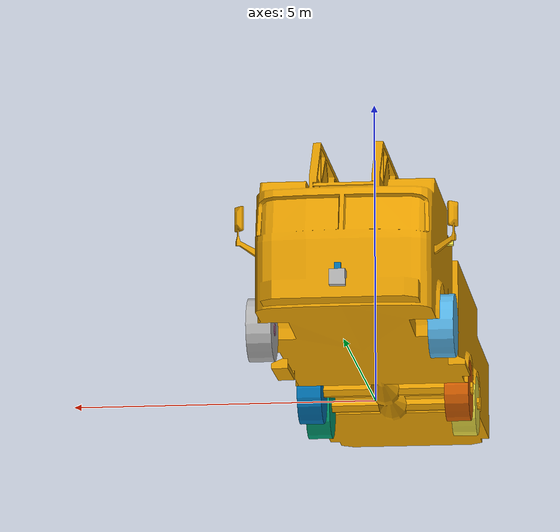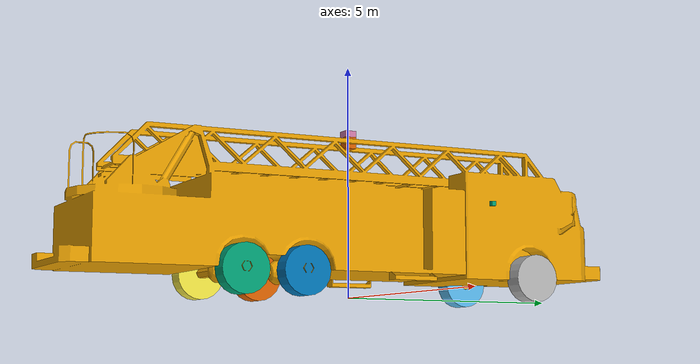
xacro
<?xml version="1.0"?>
<!-- Revolute-Revolute Manipulator -->
<robot name="$(arg robot_name)" xmlns:xacro="http://www.ros.org/wiki/xacro">

      <xacro:property name="PI" value="3.1415926835897931"/>
      <xacro:property name="base_height" value="1.65"/>
      <xacro:property name="base_mass" value="2050"/>
      <xacro:property name="base_mass_ixx" value="63"/>
      <xacro:property name="base_mass_iyy" value="1048"/>
      <xacro:property name="base_mass_izz" value="1111"/>
      <xacro:property name="base_mass_ixz" value="-31"/>
      <xacro:property name="car_width" value="2.500"/>
      <xacro:property name="car_height" value="1.3"/>

      <xacro:property name="tyre_x_front" value="1.2315"/>
      <xacro:property name="tyre_y_front" value="3.725845"/>
      <xacro:property name="tyre_length_front" value="0.4031"/>

      <xacro:property name="tyre_x_middle" value="1.2315"/>
      <xacro:property name="tyre_y_middle" value="1.629935"/>
      <xacro:property name="tyre_length_middle" value="0.4031"/>

      <xacro:property name="tyre_x_back" value="1.2315"/>
      <xacro:property name="tyre_y_back" value="2.956695"/>
      <xacro:property name="tyre_length_back" value="0.4031"/>

      <xacro:property name="tyre_r" value="0.5"/>
      <xacro:property name="tyre_radius" value="0.50625"/>
      <xacro:property name="tyre_mass" value="40"/>
      <xacro:property name="tyre_mass_ixx" value="54"/>
      <xacro:property name="tyre_mass_iyy" value="56"/>
      <xacro:property name="tyre_mass_izz" value="104"/>
      <xacro:property name="car_to_bumper" value="2.4"/>
      <xacro:property name="front_bumper_height" value="${car_height/2}"/>
      <xacro:property name="sensor_box" value="0.25"/>
      <xacro:property name="sensor_box2" value="0.31"/>
      <xacro:property name="camera_box" value="0.1"/>
      <xacro:property name="tyre_height" value="-0.696"/>
      <xacro:property name="str_length" value="0.01"/>
      <xacro:property name="str_radius" value="0.1"/>
      <xacro:property name="str_angle" value="0.6"/>
      <xacro:property name="judgeheight" value="0.05"/>

      <!-- Import all Gazebo-customization elements, including Gazebo colors -->
      <xacro:include filename="$(find multi_car)/description/urdf/urdf_fire_truck/fire_truck.gazebo" />

    <!-- Car Body -->

    <link name="base_link">
        <collision>
            <origin xyz="0 0 ${base_height}" rpy="0 0 0"/>
              <geometry>
                <box size="${car_width} 10.5 ${car_height}"/>
            </geometry>
          </collision>
        <visual>
            <origin xyz="0 0 0" rpy="0 0 0"/>
            <geometry>
              <mesh filename="file:///$(find multi_car)/description/meshes/fire_truck/fire_truck_nowheel.obj" scale="0.1 0.1 0.1"/>
            </geometry>
        </visual>
    </link>

    <joint name="inertial_joint" type="fixed">
          <parent link="base_link"/>
          <child link="main_mass"/>
          <origin xyz="0 0 0" rpy="0 0 0"/>
    </joint>

    <link name="main_mass" type="fixed">
        <parent link="inertial_joint"/>
        <inertial>
            <origin xyz="0 1 ${base_height-0.4}" rpy="0 0 0"/>
            <mass value="${base_mass}"/>
            <inertia
              ixx="${base_mass_ixx}"  ixy="0.000000" ixz="${base_mass_ixz}"
              iyy="${base_mass_iyy}" iyz="0.000000"
              izz="${base_mass_izz}"/>
          </inertial>
    </link>
    <!--Back Right Wheel-->

    <joint name="back_right_wheel_joint" type="continuous">
          <parent link="base_link"/>
          <child link="back_right_wheel_link"/>
          <origin xyz="${tyre_x_back} ${-tyre_y_back} ${tyre_r-judgeheight}" rpy="0 0 ${PI}"/>
          <axis xyz="1 0 0"/>
          <dynamics damping="0.1"/>
        <limit effort="10000" velocity="100" />
          <joint_properties damping="0.0" friction="0.0" />
    </joint>

    <link name="back_right_wheel_link">
        <collision>
            <origin xyz="0 0 0" rpy="${PI/2} 0 ${PI/2} "/>
            <geometry>
            <cylinder length="${tyre_length_back}" radius="${tyre_radius}"/>
            </geometry>
        </collision>

        <visual>
            <origin xyz="${-tyre_x_back} ${tyre_y_back} ${-tyre_radius-judgeheight+0.07}" rpy="0 0 0 "/>
            <geometry>
              <mesh filename="file:///$(find multi_car)/description/meshes/fire_truck/wheel_backright.obj" scale="0.1 0.1 0.1"/>
            </geometry>
        </visual>

          <inertial>
            <origin xyz="0 0 0" rpy="0 0 0"/>
            <mass value="${tyre_mass}"/>
            <inertia
              ixx="${tyre_mass_ixx}"  ixy="0.000000"  ixz="0.000000"
              iyy="${tyre_mass_iyy}"  iyz="0.000000"
              izz="${tyre_mass_izz}"/>
          </inertial>
    </link>

    <!--Back Left Wheel-->

    <joint name="back_left_wheel_joint" type="continuous">
          <parent link="base_link"/>
          <child link="back_left_wheel_link"/>
          <origin xyz="${-tyre_x_back} ${-tyre_y_back} ${tyre_r-judgeheight}" rpy="0 0 ${PI}"/>
          <axis xyz="1 0 0"/>
          <dynamics damping="0.1"/>
        <limit effort="10000" velocity="100" />
          <joint_properties damping="0.0" friction="0.0" />
    </joint>

    <link name="back_left_wheel_link">
        <collision>
            <origin xyz="0 0 0" rpy="${PI/2} 0 ${PI/2} "/>
            <geometry>
            <cylinder length="${tyre_length_back}" radius="${tyre_radius}"/>
            </geometry>
        </collision>

        <visual>
            <origin xyz="${tyre_x_back} ${tyre_y_back} ${-tyre_radius-judgeheight+0.07}" rpy="0 0 0 "/>
            <geometry>
              <mesh filename="file:///$(find multi_car)/description/meshes/fire_truck/wheel_backleft.obj" scale="0.1 0.1 0.1"/>
            </geometry>
        </visual>

          <inertial>
            <origin xyz="0 0 0" rpy="0 0 0"/>
            <mass value="${tyre_mass}"/>
            <inertia
              ixx="${tyre_mass_ixx}"  ixy="0.000000"  ixz="0.000000"
              iyy="${tyre_mass_iyy}"  iyz="0.000000"
              izz="${tyre_mass_izz}"/>
          </inertial>
    </link>
<!--Middle Right Wheel-->

    <joint name="middle_right_wheel_joint" type="continuous">
          <parent link="base_link"/>
          <child link="middle_right_wheel_link"/>
          <origin xyz="${tyre_x_middle} ${-tyre_y_middle} ${tyre_r-judgeheight}" rpy="0 0 ${PI}"/>
          <axis xyz="1 0 0"/>
          <dynamics damping="0.1"/>
        <limit effort="10000" velocity="100" />
          <joint_properties damping="0.0" friction="0.0" />
    </joint>

    <link name="middle_right_wheel_link">
        <collision>
            <origin xyz="0 0 0" rpy="${PI/2} 0 ${PI/2} "/>
            <geometry>
            <cylinder length="${tyre_length_middle}" radius="${tyre_radius}"/>
            </geometry>
        </collision>

        <visual>
            <origin xyz="${tyre_x_middle} ${tyre_y_middle} ${-tyre_radius-judgeheight+0.07}" rpy="0 0 0 "/>
            <geometry>
              <mesh filename="file:///$(find multi_car)/description/meshes/fire_truck/wheel_middleleft.obj" scale="0.1 0.1 0.1"/>
            </geometry>
        </visual>

          <inertial>
            <origin xyz="0 0 0" rpy="0 0 0"/>
            <mass value="${tyre_mass}"/>
            <inertia
              ixx="${tyre_mass_ixx}"  ixy="0.000000"  ixz="0.000000"
              iyy="${tyre_mass_iyy}"  iyz="0.000000"
              izz="${tyre_mass_izz}"/>
          </inertial>
    </link>

    <!--Middle Left Wheel-->

    <joint name="middle_left_wheel_joint" type="continuous">
          <parent link="base_link"/>
          <child link="middle_left_wheel_link"/>
          <origin xyz="${-tyre_x_middle} ${-tyre_y_middle} ${tyre_r-judgeheight}" rpy="0 0 ${PI}"/>
          <axis xyz="1 0 0"/>
          <dynamics damping="0.1"/>
        <limit effort="10000" velocity="100" />
          <joint_properties damping="0.0" friction="0.0" />
    </joint>

    <link name="middle_left_wheel_link">
        <collision>
            <origin xyz="0 0 0" rpy="${PI/2} 0 ${PI/2} "/>
            <geometry>
            <cylinder length="${tyre_length_middle}" radius="${tyre_radius}"/>
            </geometry>
        </collision>

        <visual>
            <origin xyz="${tyre_x_middle} ${tyre_y_middle} ${-tyre_radius-judgeheight+0.07}" rpy="0 0 0 "/>
            <geometry>
              <mesh filename="file:///$(find multi_car)/description/meshes/fire_truck/wheel_middleleft.obj" scale="0.1 0.1 0.1"/>
            </geometry>
        </visual>

          <inertial>
            <origin xyz="0 0 0" rpy="0 0 0"/>
            <mass value="${tyre_mass}"/>
            <inertia
              ixx="${tyre_mass_ixx}"  ixy="0.000000"  ixz="0.000000"
              iyy="${tyre_mass_iyy}"  iyz="0.000000"
              izz="${tyre_mass_izz}"/>
          </inertial>
    </link>

<!--Right Steering-->

<joint name="front_right_steering_joint" type="revolute">
	<parent link="base_link"/>
	<child link="front_right_steering_link"/>
	<origin xyz="${tyre_x_front+str_length/2} ${tyre_y_front} ${tyre_r-judgeheight}" rpy="0 0 0"/>
        <axis xyz="0 0 1"/>
	<limit effort="1000.0" lower="${-str_angle}" upper="${str_angle}" velocity="0.5"/>
</joint>

<link name="front_right_steering_link">
	<collision>
        <origin xyz="0 0 0" rpy="${PI/2} 0 ${PI/2} "/>
	      <geometry>
        <cylinder length="${str_length}" radius="${str_radius}"/>
       	</geometry>
	</collision>

	<visual>
        <origin xyz="0 0 0" rpy="${PI/2} 0 ${PI/2} "/>
        <geometry>
        <cylinder length="${str_length}" radius="${str_radius}"/>
        </geometry>
	</visual>

      <inertial>
        <origin xyz="0 0 0" rpy="0 0 0"/>
        <mass value="10.00"/>
        <inertia
          ixx="0.4"  ixy="0.000000"  ixz="0.000000"
          iyy="0.6"  iyz="0.000000"
          izz="0.4"/>
      </inertial>
</link>

<!--Right Front Wheel-->

<joint name="front_right_wheel_joint" type="continuous">
      <parent link="front_right_steering_link"/>
      <child link="front_right_wheel_link"/>
      <origin xyz="${str_length/2 + tyre_length_front/2} 0 0" rpy="0 0 ${PI}"/>
      <axis xyz="1 0 0"/>
</joint>

<link name="front_right_wheel_link">
     <collision>
       <origin xyz="0 0 0" rpy="${PI/2} 0 ${PI/2} "/>
        <geometry>
         <cylinder length="${tyre_length_front}" radius="${tyre_radius}"/>
	</geometry>
     </collision>

     <visual>
      <origin xyz="${-tyre_x_front} ${-tyre_y_front} ${-tyre_radius}" rpy="0 0 0"/>
        <geometry>
          <mesh filename="file:///$(find multi_car)/description/meshes/fire_truck/wheel_frontright.obj" scale="0.1 0.1 0.1"/>
       </geometry>
      </visual>

      <inertial>
        <origin xyz="0 0 0" rpy="0 0 0"/>
        <mass value="${tyre_mass}"/>
        <inertia
          ixx="${tyre_mass_ixx}"  ixy="0.000000"  ixz="0.000000"
          iyy="${tyre_mass_iyy}"  iyz="0.000000"
          izz="${tyre_mass_izz}"/>
      </inertial>
</link>

<!--Left Steering-->

<joint name="front_left_steering_joint" type="revolute">
	<parent link="base_link"/>
	<child link="front_left_steering_link"/>
	<origin xyz="${-tyre_x_front-str_length/2} ${tyre_y_front} ${tyre_r-judgeheight}" rpy="0 0 0"/>
        <axis xyz="0 0 1"/>
	<limit effort="1000.0" lower="${-str_angle}" upper="${str_angle}" velocity="0.5"/>
</joint>

<link name="front_left_steering_link">
	<collision>
        <origin xyz="0 0 0" rpy="${PI/2} 0 ${PI/2} "/>
	        <geometry>
        	 <cylinder length="${str_length}" radius="${str_radius}"/>
       		</geometry>
	</collision>

	<visual>
        <origin xyz="0 0 0" rpy="${PI/2} 0 ${PI/2} "/>
        <geometry>
        <cylinder length="${str_length}" radius="${str_radius}"/>
        </geometry>
	</visual>

      <inertial>
        <origin xyz="0 0 0" rpy="0 0 0"/>
        <mass value="10.00"/>
        <inertia
          ixx="0.4"  ixy="0.000000"  ixz="0.000000"
          iyy="0.6"  iyz="0.000000"
          izz="0.4"/>
      </inertial>
</link>

<!--Left Front Wheel-->

<joint name="front_left_wheel_joint" type="continuous">
      <parent link="front_left_steering_link"/>
      <child link="front_left_wheel_link"/>
      <origin xyz="${-str_length/2 - tyre_length_front/2} 0 0" rpy="0 0 ${PI}"/>
      <axis xyz="1 0 0"/>
</joint>

<link name="front_left_wheel_link">
     <collision>
       <origin xyz="0 0 0" rpy="${PI/2} 0 ${PI/2} "/>
        <geometry>
         <cylinder length="${tyre_length_front}" radius="${tyre_radius}"/>
      	</geometry>
     </collision>

     <visual>
      <origin xyz="${tyre_x_front} ${-tyre_y_front} ${-tyre_radius}" rpy="0 0 0"/>
        <geometry>
          <mesh filename="file:///$(find multi_car)/description/meshes/fire_truck/wheel_frontleft.obj" scale="0.1 0.1 0.1"/>
       </geometry>
      </visual>

      <inertial>
        <origin xyz="0 0 0" rpy="0 0 0"/>
        <mass value="${tyre_mass}"/>
        <inertia
          ixx="${tyre_mass_ixx}"  ixy="0.000000"  ixz="0.000000"
          iyy="${tyre_mass_iyy}"  iyz="0.000000"
          izz="${tyre_mass_izz}"/>
      </inertial>
</link>

<!-- Cameras-->

<joint name="camera_right_joint" type="fixed">
<origin xyz="${tyre_x_front + camera_box/2+0.2} ${tyre_y_front-1} ${0.725 + camera_box/2 + 1.25}" rpy="0 0 0"/>
	<axis xyz="0 0 1"/>
	<parent link="base_link"/>
	<child link="camera_right_link"/>
</joint>

<link name="camera_right_link">
	<collision>
	  <origin xyz="0 0 0" rpy="0 0 0"/>
	  <geometry>
	   <box size="${camera_box} ${camera_box} ${camera_box}"/>
	  </geometry>
	</collision>

	<visual>
	  <origin xyz="0 0 0" rpy="0 0 0"/>
	  <geometry>
	  <box size="${camera_box} ${camera_box} ${camera_box}"/>
    </geometry>
	</visual>

    <inertial>
      <mass value="1e-5" />
      <origin xyz="0 0 0" rpy="0 0 0"/>
      <inertia ixx="1e-6" ixy="0" ixz="0" iyy="1e-6" iyz="0" izz="1e-6" />
    </inertial>
</link>
  <gazebo reference="camera_right_link">
    <sensor type="camera" name="camera_right_sensor">
      <update_rate>30.0</update_rate>
      <camera name="camera_right">
        <horizontal_fov>1.3962634</horizontal_fov>
        <image>
          <width>800</width>
          <height>800</height>
          <format>R8G8B8</format>
        </image>
        <clip>
          <near>0.02</near>
          <far>300</far>
        </clip>
        <noise>
          <type>gaussian</type>
          <mean>0.0</mean>
          <stddev>0.007</stddev>
        </noise>
      </camera>
      <plugin name="camera_right_controller" filename="libgazebo_ros_camera.so">
        <alwaysOn>false</alwaysOn>
        <updateRate>0.0</updateRate>
        <cameraName>camera_right</cameraName>
        <imageTopicName>image_raw</imageTopicName>
        <cameraInfoTopicName>/$(arg robot_name)/camera_right_info</cameraInfoTopicName>
        <frameName>camera_link</frameName>
        <hackBaseline>0.07</hackBaseline>
        <distortionK1>0.0</distortionK1>
        <distortionK2>0.0</distortionK2>
        <distortionK3>0.0</distortionK3>
        <distortionT1>0.0</distortionT1>
        <distortionT2>0.0</distortionT2>
      </plugin>
    </sensor>
  </gazebo>

<joint name="camera_left_joint" type="fixed">
<origin xyz="${-tyre_x_front - camera_box/2-0.2} ${tyre_y_front-1} ${0.725 + camera_box/2 + 1.25}" rpy="0 0 ${PI}"/>
	<axis xyz="0 0 1"/>
	<parent link="base_link"/>
	<child link="camera_left_link"/>
</joint>

<link name="camera_left_link">
	<collision>
	  <origin xyz="0 0 0" rpy="0 0 0"/>
	  <geometry>
	   <box size="${camera_box} ${camera_box} ${camera_box}"/>
	  </geometry>
	</collision>

	<visual>
	  <origin xyz="0 0 0" rpy="0 0 0"/>
	  <geometry>
	  <box size="${camera_box} ${camera_box} ${camera_box}"/>
    </geometry>
	</visual>

    <inertial>
      <mass value="1e-5" />
      <origin xyz="0 0 0" rpy="0 0 0"/>
      <inertia ixx="1e-6" ixy="0" ixz="0" iyy="1e-6" iyz="0" izz="1e-6" />
    </inertial>
</link>
  <gazebo reference="camera_left_link">
    <sensor type="camera" name="camera_left_sensor">
      <update_rate>30.0</update_rate>
      <camera name="camera_left">
        <horizontal_fov>1.3962634</horizontal_fov>
        <image>
          <width>800</width>
          <height>800</height>
          <format>R8G8B8</format>
        </image>
        <clip>
          <near>0.02</near>
          <far>300</far>
        </clip>
        <noise>
          <type>gaussian</type>
          <mean>0.0</mean>
          <stddev>0.007</stddev>
        </noise>
      </camera>
      <plugin name="camera_left_controller" filename="libgazebo_ros_camera.so">
        <alwaysOn>false</alwaysOn>
        <updateRate>0.0</updateRate>
        <cameraName>camera_left</cameraName>
        <imageTopicName>image_raw</imageTopicName>
        <cameraInfoTopicName>/$(arg robot_name)/camera_left_info</cameraInfoTopicName>
        <frameName>camera_link</frameName>
        <hackBaseline>0.07</hackBaseline>
        <distortionK1>0.0</distortionK1>
        <distortionK2>0.0</distortionK2>
        <distortionK3>0.0</distortionK3>
        <distortionT1>0.0</distortionT1>
        <distortionT2>0.0</distortionT2>
      </plugin>
    </sensor>
  </gazebo>

<joint name="camera_front_joint" type="fixed">
<origin xyz="0 ${car_to_bumper+3.5} ${front_bumper_height + sensor_box/2 + 0.2}" rpy="0 0 ${PI/2}"/>
	<axis xyz="0 0 1"/>
	<parent link="base_link"/>
	<child link="camera_front_link"/>
</joint>

<link name="camera_front_link">
	<collision>
	  <origin xyz="0 0 0" rpy="0 0 0"/>
	  <geometry>
	   <box size="${camera_box} ${camera_box} ${camera_box}"/>
	  </geometry>
	</collision>

	<visual>
	  <origin xyz="0 0 0" rpy="0 0 0"/>
	  <geometry>
	  <box size="${camera_box} ${camera_box} ${camera_box}"/>
    </geometry>
	</visual>

    <inertial>
      <mass value="1e-5" />
      <origin xyz="0 0 0" rpy="0 0 0"/>
      <inertia ixx="1e-6" ixy="0" ixz="0" iyy="1e-6" iyz="0" izz="1e-6" />
    </inertial>
</link>
  <gazebo reference="camera_front_link">
    <sensor type="camera" name="camera_front_sensor">
      <update_rate>50.0</update_rate>
      <camera name="camera_front">
        <horizontal_fov>1.3962634</horizontal_fov>
        <image>
          <width>640</width>
          <width>480</width>
          <format>R8G8B8</format>
        </image>
        <clip>
          <near>0.02</near>
          <far>300</far>
        </clip>
        <noise>
          <type>gaussian</type>
          <mean>0.0</mean>
          <stddev>0.007</stddev>
        </noise>
      </camera>
      <plugin name="camera_front_controller" filename="libgazebo_ros_camera.so">
        <alwaysOn>false</alwaysOn>
        <updateRate>0.0</updateRate>
        <cameraName>camera_front</cameraName>
        <imageTopicName>image_raw</imageTopicName>
        <cameraInfoTopicName>/$(arg robot_name)/camera_front_info</cameraInfoTopicName>
        <frameName>camera_link</frameName>
        <hackBaseline>0.07</hackBaseline>
        <distortionK1>0.0</distortionK1>
        <distortionK2>0.0</distortionK2>
        <distortionK3>0.0</distortionK3>
        <distortionT1>0.0</distortionT1>
        <distortionT2>0.0</distortionT2>
      </plugin>
    </sensor>
  </gazebo>
<joint name="camera_joint" type="fixed">
<origin xyz="0 0 ${0.725 + sensor_box/2 + 2.5}" rpy="0 0 ${-PI/2}"/>
	<axis xyz="0 0 1"/>
	<parent link="base_link"/>
	<child link="camera_link"/>
</joint>

<link name="camera_link">
	<collision>
	  <origin xyz="0 0 0" rpy="0 0 0"/>
	  <geometry>
	   <box size="${sensor_box} ${sensor_box} ${sensor_box}"/>
	  </geometry>
	</collision>

	<visual>
	  <origin xyz="0 0 0" rpy="0 0 0"/>
	  <geometry>
	  <box size="${sensor_box} ${sensor_box} ${sensor_box}"/>
          </geometry>
	</visual>

    <inertial>
      <mass value="1e-5" />
      <origin xyz="0 0 0" rpy="0 0 0"/>
      <inertia ixx="1e-6" ixy="0" ixz="0" iyy="1e-6" iyz="0" izz="1e-6" />
    </inertial>
</link>

  <gazebo reference="camera_link">
    <sensor type="camera" name="camera_sensor">
      <update_rate>30.0</update_rate>
      <camera name="camera">
        <horizontal_fov>1.3962634</horizontal_fov>
        <image>
          <width>800</width>
          <height>800</height>
          <format>R8G8B8</format>
        </image>
        <clip>
          <near>0.02</near>
          <far>300</far>
        </clip>
        <noise>
          <type>gaussian</type>
          <mean>0.0</mean>
          <stddev>0.007</stddev>
        </noise>
      </camera>
      <plugin name="camera_link_controller" filename="libgazebo_ros_camera.so">
        <alwaysOn>false</alwaysOn>
        <updateRate>0.0</updateRate>
        <cameraName>camera_link</cameraName>
        <imageTopicName>image_raw</imageTopicName>
        <cameraInfoTopicName>/$(arg robot_name)/camera_info</cameraInfoTopicName>
        <frameName>camera_link</frameName>
        <hackBaseline>0.07</hackBaseline>
        <distortionK1>0.0</distortionK1>
        <distortionK2>0.0</distortionK2>
        <distortionK3>0.0</distortionK3>
        <distortionT1>0.0</distortionT1>
        <distortionT2>0.0</distortionT2>
      </plugin>
    </sensor>
  </gazebo>

<!--Velodyne LIDAR-->

<joint name="velodyne_joint" type="fixed">
	<origin xyz="0 0 ${sensor_box/2 + 0.01}" rpy="0 0 0"/>
	<axis xyz="0 0 1"/>
	<parent link="camera_link"/>
	<child link="center_laser_link"/>
</joint>

<link name="center_laser_link">
        <collision>
          <origin xyz="0 0 0" rpy="0 0 0"/>
          <geometry>
           <box size="${sensor_box} ${sensor_box} ${sensor_box}"/>
          </geometry>
        </collision>

        <visual>
          <origin xyz="0 0 0" rpy="0 0 0"/>
          <geometry>
           <box size="${sensor_box} ${sensor_box} ${sensor_box}"/>
          </geometry>
        </visual>

    <inertial>
      <mass value="1e-5" />
      <origin xyz="0 0 0" rpy="0 0 0"/>
      <inertia ixx="1e-6" ixy="0" ixz="0" iyy="1e-6" iyz="0" izz="1e-6" />
    </inertial>
</link>

<gazebo reference="center_laser_link">
    <sensor name='center_laser_sensor' type='ray'>
      <ray>
        <scan>
          <horizontal>
            <samples>512</samples>
            <resolution>1</resolution>
            <min_angle>-3.14</min_angle>
            <max_angle>3.14</max_angle>
          </horizontal>
          <vertical>
            <samples>16</samples>
            <min_angle>-0.1</min_angle>
            <max_angle>-0.35</max_angle>
          </vertical>
        </scan>
        <range>
          <min>0.2</min>
          <max>30</max>
          <resolution>0.01</resolution>
        </range>
      </ray>
      <plugin name='sick_lms291_controller' filename='libgazebo_ros_block_laser.so'>
        <topicName>/$(arg robot_name)/center_laser/scan</topicName>
        <frameName>center_laser_link</frameName>
      </plugin>
      <always_on>1</always_on>
      <update_rate>30</update_rate>
      <visualize>0</visualize>
    </sensor>
  </gazebo>

<!--front_laser-->
<joint name="front_laser_joint" type="fixed">
	<origin xyz="0 ${car_to_bumper+3.5} ${front_bumper_height + sensor_box/2 + 0.01}" rpy="0 0 0"/>
	<axis xyz="0 0 1"/>
	<parent link="base_link"/>
	<child link="front_laser_link"/>
</joint>

<link name="front_laser_link">
     <parent link="front_laser_joint"/>
        <collision>
          <origin xyz="0 0 0" rpy="0 0.0 0"/>
          <geometry>
           <box size="${sensor_box} ${sensor_box} ${sensor_box}"/>
          </geometry>
        </collision>

        <visual>
          <origin xyz="0 0 0" rpy="0 0 0"/>
          <geometry>
           <box size="${sensor_box} ${sensor_box} ${sensor_box}"/>
          </geometry>
        </visual>

    <inertial>
      <mass value="1e-5" />
      <origin xyz="0 0 0" rpy="0 0 0"/>
      <inertia ixx="1e-6" ixy="0" ixz="0" iyy="1e-6" iyz="0" izz="1e-6" />
    </inertial>
</link>
<gazebo reference="front_laser_link">
        <sensor type="ray" name="front_laser_sensor">
              <pose>0 0 0 0 0 0</pose>
                   <visualize>true</visualize>
                    <update_rate>50</update_rate>
                       <ray>
                           <scan>
                                <horizontal>
                                       <samples>180</samples>
                                           <resolution>1</resolution>
                                            <min_angle>0</min_angle>
                                            <max_angle>3.14</max_angle>
                                </horizontal>
                           </scan>
                           <range>
                                <min>1.5</min>
                                <!-- This range is in m, I hope... -->
                                <max>80.0</max>
                                <resolution>0.05</resolution>
                           </range>
                      </ray>
			   <plugin name="front_laser" filename="libgazebo_ros_laser.so">
			      <topicName>/$(arg robot_name)/front_laser/scan</topicName>
			      <frameName>/$(arg robot_name)/front_laser_link</frameName>
			      <gaussianNoise>0.02</gaussianNoise>
                 </plugin>
      </sensor>
</gazebo>

<!-- motors and transmissions for the two rear wheels -->
  <transmission name="tran1">
    <type>transmission_interface/SimpleTransmission</type>
    <joint name="back_right_wheel_joint">
      <hardwareInterface>hardware_interface/VelocityJointInterface</hardwareInterface>
    </joint>
    <actuator name="motor1">
      <hardwareInterface>hardware_interface/VelocityJointInterface</hardwareInterface>
      <mechanicalReduction>1</mechanicalReduction>
    </actuator>
  </transmission>

  <transmission name="tran2">
    <type>transmission_interface/SimpleTransmission</type>
    <joint name="back_left_wheel_joint">
      <hardwareInterface>hardware_interface/VelocityJointInterface</hardwareInterface>
    </joint>
    <actuator name="motor2">
      <hardwareInterface>hardware_interface/VelocityJointInterface</hardwareInterface>
      <mechanicalReduction>1</mechanicalReduction>
    </actuator>
  </transmission>

  <transmission name="tran3">
    <type>transmission_interface/SimpleTransmission</type>
    <joint name="middle_right_wheel_joint">
      <hardwareInterface>hardware_interface/VelocityJointInterface</hardwareInterface>
    </joint>
    <actuator name="motor3">
      <hardwareInterface>hardware_interface/VelocityJointInterface</hardwareInterface>
      <mechanicalReduction>1</mechanicalReduction>
    </actuator>
  </transmission>

  <transmission name="tran4">
    <type>transmission_interface/SimpleTransmission</type>
    <joint name="middle_left_wheel_joint">
      <hardwareInterface>hardware_interface/VelocityJointInterface</hardwareInterface>
    </joint>
    <actuator name="motor4">
      <hardwareInterface>hardware_interface/VelocityJointInterface</hardwareInterface>
      <mechanicalReduction>1</mechanicalReduction>
    </actuator>
  </transmission>

  <transmission name="rack_and_pinion_left">
    <type>transmission_interface/SimpleTransmission</type>
    <joint name="front_left_steering_joint">
      <hardwareInterface>hardware_interface/PositionJointInterface</hardwareInterface>
    </joint>
    <actuator name="eps_left">
      <hardwareInterface>hardware_interface/PositionJointInterface</hardwareInterface>
      <mechanicalReduction>1</mechanicalReduction>
    </actuator>
  </transmission>

  <transmission name="rack_and_pinion_right">
    <type>transmission_interface/SimpleTransmission</type>
    <joint name="front_right_steering_joint">
      <hardwareInterface>hardware_interface/PositionJointInterface</hardwareInterface>
    </joint>
    <actuator name="eps_right">
      <hardwareInterface>hardware_interface/PositionJointInterface</hardwareInterface>
      <mechanicalReduction>1</mechanicalReduction>
    </actuator>
  </transmission>
</robot>
